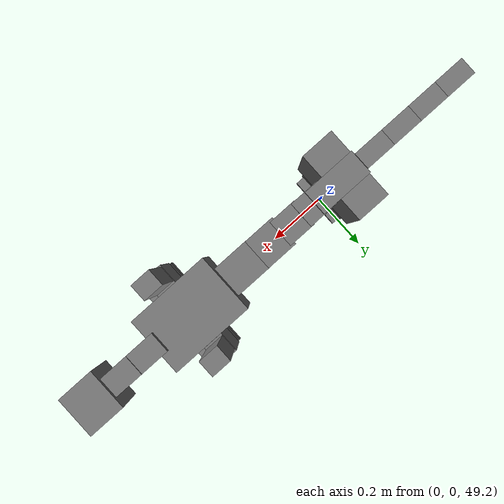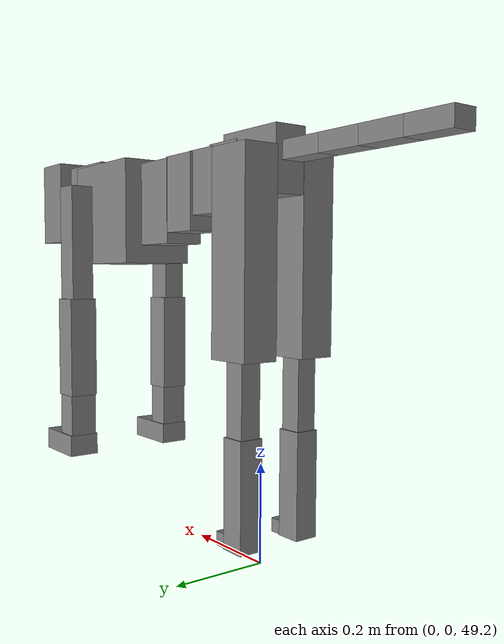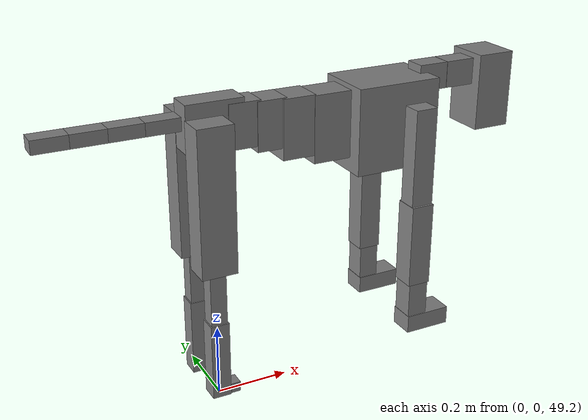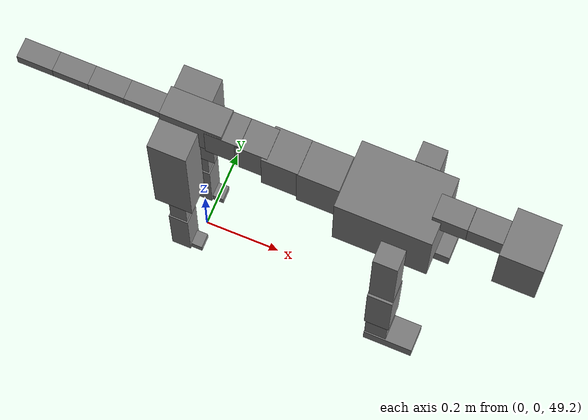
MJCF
<mujoco model="dog">

    <default>
        <joint armature="0.02" stiffness="1" damping="0.2" limited="true"/>
        <geom condim="3" friction="1 0.05 0.05" margin="0.01"/>
        <motor ctrllimited="true" ctrlrange="-1.0 1.0" forcelimited="true" gear="50"/>
    </default>

    <compiler inertiafromgeom="true" angle="radian"/>

    <option timestep="0.016" iterations="50" tolerance="1e-10" solver="Newton" jacobian="dense" cone="pyramidal"/>

    <size nconmax="20000" njmax="60000" nstack="5000000"/>
    <visual>
        <map force="0.1" zfar="30"/>
        <rgba haze="0.15 0.25 0.35 1"/>
        <quality shadowsize="2048"/>
        <global offwidth="800" offheight="800"/>
    </visual>

    <asset>
        <texture type="skybox" builtin="gradient" rgb1="0.3 0.5 0.7" rgb2="0 0 0" width="512" height="512"/>
        <texture name="texplane" type="2d" builtin="checker" rgb1=".2 .3 .4" rgb2=".1 0.15 0.2" width="512" height="512"
                 mark="cross" markrgb=".8 .8 .8"/>
        <texture name="texgeom" type="cube" builtin="flat" mark="cross" width="127" height="1278" rgb1="0.8 0.6 0.4"
                 rgb2="0.8 0.6 0.4" markrgb="1 1 1" random="0.01"/>

        <material name="matplane" reflectance="0.3" texture="texplane" texrepeat="1 1" texuniform="true"/>
        <material name="matgeom" texture="texgeom" texuniform="true" rgba="0.8 0.6 .4 1"/>
    </asset>

    <worldbody>
        <geom name="floor" pos="0 0 0" size="0 0 .25" type="plane" material="matplane" condim="3"/>

        <light directional="false" diffuse=".2 .2 .2" specular="0 0 0" pos="0 0 5" dir="0 0 -1" castshadow="false"/>
        <light mode="targetbodycom" target="torso" directional="false" diffuse=".8 .8 .8" specular="0.3 0.3 0.3"
               pos="0 0 4.0" dir="0 0 -1"/>

        <body name="root" pos="0 0 50">
            <freejoint name="root_1"/>
            <geom type="box" pos="0 0 -0.02" size="0.0774  0.0358  0.063" density="2030"/>

            <body name="spine1" pos="0.054 0 0">
                <joint name="spine1_y" axis="0 1 0" range="0 0.7" limited="true"/>
                <geom type="box" pos="0.02375 0 -0.03" size="0.04375  0.0375  0.05985" density="2030"/>

                <body name="spine2" pos="0.0612 0 0">
                    <joint name="spine2_y" axis="0 1 0" range="-0.15 0.15" limited="true"/>
                    <geom type="box" pos="0.03555  0  -0.04" size="0.04055  0.039  0.06615" density="2030"/>

                    <body name="spine3" pos="0.0730 0 0">
                        <joint name="spine3_y" axis="0 1 0" range="-0.15 0.15" limited="true"/>
                        <geom type="box" pos="0.03555  0  -0.057" size="0.04555  0.0445  0.081" density="2030"/>

                        <body name="spine4" pos="0.0780 0 0">
                            <joint name="spine4_y" axis="0 1 0" range="-0.15 0.15" limited="true"/>
                            <geom type="box" pos="0.05265  0  -0.07" size="0.05265  0.045  0.09135" density="2030"/>

                            <body name="torso" pos="0.1082 0 0">
                                <joint name="torso_y" axis="0 1 0" range="-0.15 0.15" limited="true"/>
                                <geom type="box" pos="0.11925  0  -0.085" size="0.11925  0.085  0.11745"
                                      density="2030"/>

                                <body name="neck1" pos="0.2160  0   0.0180">
                                    <joint name="neck1_y" axis="0 1 0" range="-1.2  -1" limited="true"/>
                                    <geom type="box" pos="0.0423  0  0" size="0.0423  0.03  0.036" density="2325"/>

                                    <body name="neck2" pos="0.0853  0  0">
                                        <joint name="neck2_y" axis="0 1 0" range="0.1  0" limited="true"/>
                                        <geom type="box" pos="0.0423  0  0" size="0.0423  0.03  0.036" density="2325"/>

                                        <body name="head" pos="0.0853  0  0">
                                            <joint name="head_y" axis="0 1 0" range="-0.3  -0.2" limited="true"/>
                                            <geom type="box" pos="0.0531  0  -0.055" size="0.0531  0.06  0.1044"
                                                  density="4030"/>

                                        </body>
                                    </body>
                                </body>

                                <body name="front_shoulder" pos="0.156  0   -0.0480">
                                    <joint name="front_shoulder_y" axis="0 1 0" range="-1 1.5" limited="true"/>
                                    <geom type="box" pos="0 0.13 -0.1194" size="0.0309  0.0264  0.1461" density="1158"/>
                                    <geom type="box" pos="0 -0.13 -0.1194" size="0.0309  0.0264  0.1461"
                                          density="1158"/>

                                    <body name="front_elbow" pos="0  0  -0.2389">
                                        <joint name="front_elbow_y" axis="0 1 0" range="-2 0" limited="true"/>
                                        <geom type="box" pos="0 0.13 -0.1154" size="0.0321  0.0329  0.1154"
                                              density="1081"/>
                                        <geom type="box" pos="0 -0.13 -0.1154" size="0.0321  0.0329  0.1154"
                                              density="1081"/>

                                        <body name="front_wrist" pos="0  0  -0.2308">
                                            <joint name="front_wrist_y" axis="0 1 0" range="-0.2 0" limited="true"/>
                                            <geom type="box" pos="0 0.13 -0.0551" size="0.0284  0.0316  0.0683"
                                                  density="1664"/>
                                            <geom type="box" pos="0 -0.13 -0.0551" size="0.0284  0.0316  0.0683"
                                                  density="1664"/>

                                            <body name="front_finger_end" pos="0  0  -0.1103">
                                                <joint name="front_finger_y" axis="0 1 0" range="-0.4 1"
                                                       limited="true"/>
                                                <geom type="box" pos="0.0350  0.13  -0.0097"
                                                      size="0.0641  0.0350  0.0247" density="1515"/>
                                                <geom type="box" pos="0.0350  -0.13  -0.0097"
                                                      size="0.0641  0.0350  0.0247" density="1515"/>

                                            </body>

                                        </body>
                                    </body>
                                </body>

                            </body>
                        </body>
                    </body>
                </body>
            </body>

            <body name="back_hip" pos="-0.03 0 -0.018">
                <joint name="back_hip_y" axis="0 1 0" range="-1.5 0.3" limited="true"/>
                <geom type="box" pos="0 0.07 -0.1740" size="0.0485  0.0380  0.1968" density="1154"/>
                <geom type="box" pos="0 -0.07 -0.1740" size="0.0485  0.0380  0.1968" density="1154"/>

                <body name="back_knee" pos="0  0  -0.3479">
                    <joint name="back_knee_y" axis="0 1 0" range="0 2.8" limited="true"/>
                    <geom type="box" pos="0 0.07 -0.0896" size="0.0222  0.0219  0.1052" density="1227"/>
                    <geom type="box" pos="0 -0.07 -0.0896" size="0.0222  0.0219  0.1052" density="1227"/>

                    <body name="back_ankle" pos="0  0  -0.1793">
                        <joint name="back_ankle_y" axis="0 1 0" range="-2.2 0" limited="true"/>
                        <geom type="box" pos="0 0.07 -0.0966" size="0.0256  0.0256  0.1078" density="1284"/>
                        <geom type="box" pos="0 -0.07 -0.0966" size="0.0256  0.0256  0.1078" density="1284"/>

                        <body name="back_toe_end" pos="0  0  -0.1932">
                            <joint name="back_toe_y" axis="0 1 0" range="-0.4 1" limited="true"/>
                            <geom type="box" pos="0.0194  0.07  0.0011" size="0.0355  0.0194  0.0139" density="1515"/>
                            <geom type="box" pos="0.0194  -0.07  0.0011" size="0.0355  0.0194  0.0139" density="1515"/>

                        </body>
                    </body>
                </body>
            </body>

            <body name="tail1" pos="-0.074 0 -0.006">
                <joint name="tail1_y" axis="0 1 0" range="-0.2 0.2" limited="true"/>
                <geom type="box" pos="-0.0536  0  0" size="0.045  0.025  0.0175" density="1587"/>

                <body name="tail2" pos="-0.09 0 0">
                    <joint name="tail2_y" axis="0 1 0" range="-0.2 0.2" limited="true"/>
                    <geom type="box" pos="-0.0536  0  0" size="0.045  0.025  0.0175" density="1587"/>

                    <body name="tail3" pos="-0.09 0 0">
                        <joint name="tail3_y" axis="0 1 0" range="-0.2 0.2" limited="true"/>
                        <geom type="box" pos="-0.0536  0  0" size="0.045  0.025  0.0175" density="1587"/>

                        <body name="tail4" pos="-0.09 0 0">
                            <joint name="tail4_y" axis="0 1 0" range="-0.2 0.2" limited="true"/>
                            <geom type="box" pos="-0.0536  0  0" size="0.045  0.025  0.0175" density="1587"/>

                        </body>
                    </body>
                </body>
            </body>
        </body>
    </worldbody>

    <actuator>
        <motor joint="spine1_y" forcerange="-150 150     "/>
        <motor joint="spine2_y" forcerange="-150 150     "/>
        <motor joint="spine3_y" forcerange="-150 150     "/>
        <motor joint="spine4_y" forcerange="-150 150     "/>
        <motor joint="torso_y" forcerange="-150 150     "/>
        <motor joint="neck1_y" forcerange="-100 100       "/>
        <motor joint="neck2_y" forcerange="-100 100       "/>
        <motor joint="head_y" forcerange="-150 150       "/>
        <motor joint="front_shoulder_y" forcerange="-133.36 142.85"/>
        <motor joint="front_elbow_y" forcerange="-177.54 161.45"/>
        <motor joint="front_wrist_y" forcerange="-131.33 121.24"/>
        <motor joint="front_finger_y" forcerange="-64.09 82.52"/>
        <motor joint="back_hip_y" forcerange="-391.33 315.67"/>
        <motor joint="back_knee_y" forcerange="-209.23 309.33"/>
        <motor joint="back_angle_y" forcerange="-246.46 63.18"/>
        <motor joint="back_toe_y" forcerange="-38.64 36.23"/>
        <motor joint="tail1_y" forcerange="-50 50     "/>
        <motor joint="tail2_y" forcerange="-50 50     "/>
        <motor joint="tail3_y" forcerange="-50 50     "/>
        <motor joint="tail4_y" forcerange="-50 50     "/>
    </actuator>
</mujoco>
